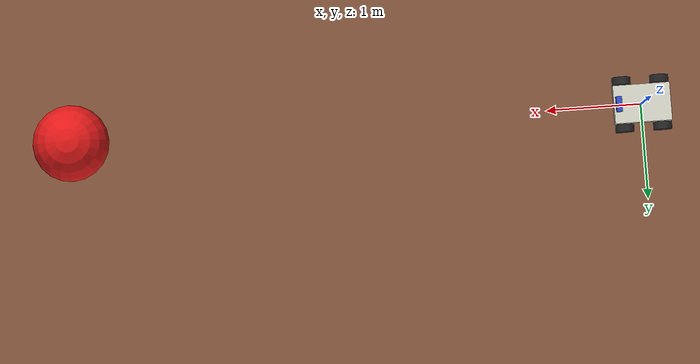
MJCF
<!--
FlyRover Faz 1 sahnesi: 4 tekerli skid-steer rover + ustune gelen kirmizi tehdit topu.
Rover +x yonune bakar. "eye" kamerasi rover'in on gorusu (SNN'in gozu),
"chase" kamerasi video kaydi icin.
-->
<mujoco model="flyrover_escape">
  <option timestep="0.002" integrator="implicitfast"/>
  <visual>
    <global offwidth="640" offheight="480"/>
    <headlight ambient="0.4 0.4 0.4"/>
  </visual>

  <asset>
    <texture name="grid" type="2d" builtin="checker" width="512" height="512"
             rgb1="0.55 0.35 0.25" rgb2="0.5 0.32 0.22"/>
    <material name="mars" texture="grid" texrepeat="20 20"/>
  </asset>

  <default>
    <geom friction="1.0 0.02 0.001"/>
    <default class="wheel">
      <geom type="cylinder" size="0.1 0.04" euler="90 0 0" rgba="0.15 0.15 0.15 1" mass="0.5"
            friction="1.2 0.02 0.001"/>
      <joint type="hinge" axis="0 1 0" damping="0.01"/>
    </default>
  </default>

  <worldbody>
    <light pos="0 0 6" dir="0 0 -1" diffuse="0.8 0.8 0.8"/>
    <geom name="ground" type="plane" size="40 40 0.1" material="mars"/>

    <body name="rover" pos="0 0 0.12">
      <freejoint/>
      <geom name="chassis" type="box" size="0.3 0.2 0.06" rgba="0.85 0.85 0.8 1" mass="8"/>
      <geom type="box" pos="0.25 0 0.09" size="0.03 0.08 0.04" rgba="0.2 0.3 0.8 1" mass="0.1"/>
      <camera name="eye" pos="0.32 0 0.12" xyaxes="0 -1 0 0 0 1" fovy="70"/>
      <camera name="chase" pos="1.8 -6.5 3" xyaxes="1 0 0 0 0.42 0.9" mode="track"/>
      <body name="wheel_fl" pos="0.2 0.25 -0.02"><joint name="fl" class="wheel"/><geom class="wheel"/></body>
      <body name="wheel_rl" pos="-0.2 0.25 -0.02"><joint name="rl" class="wheel"/><geom class="wheel"/></body>
      <body name="wheel_fr" pos="0.2 -0.25 -0.02"><joint name="fr" class="wheel"/><geom class="wheel"/></body>
      <body name="wheel_rr" pos="-0.2 -0.25 -0.02"><joint name="rr" class="wheel"/><geom class="wheel"/></body>
    </body>

    <body name="threat" mocap="true" pos="6 0 0.4">
      <geom type="sphere" size="0.4" rgba="0.9 0.1 0.1 1" contype="0" conaffinity="0"/>
    </body>

  </worldbody>

  <actuator>
    <velocity name="v_fl" joint="fl" kv="3" ctrllimited="true" ctrlrange="-20 20"/>
    <velocity name="v_rl" joint="rl" kv="3" ctrllimited="true" ctrlrange="-20 20"/>
    <velocity name="v_fr" joint="fr" kv="3" ctrllimited="true" ctrlrange="-20 20"/>
    <velocity name="v_rr" joint="rr" kv="3" ctrllimited="true" ctrlrange="-20 20"/>
  </actuator>
</mujoco>
